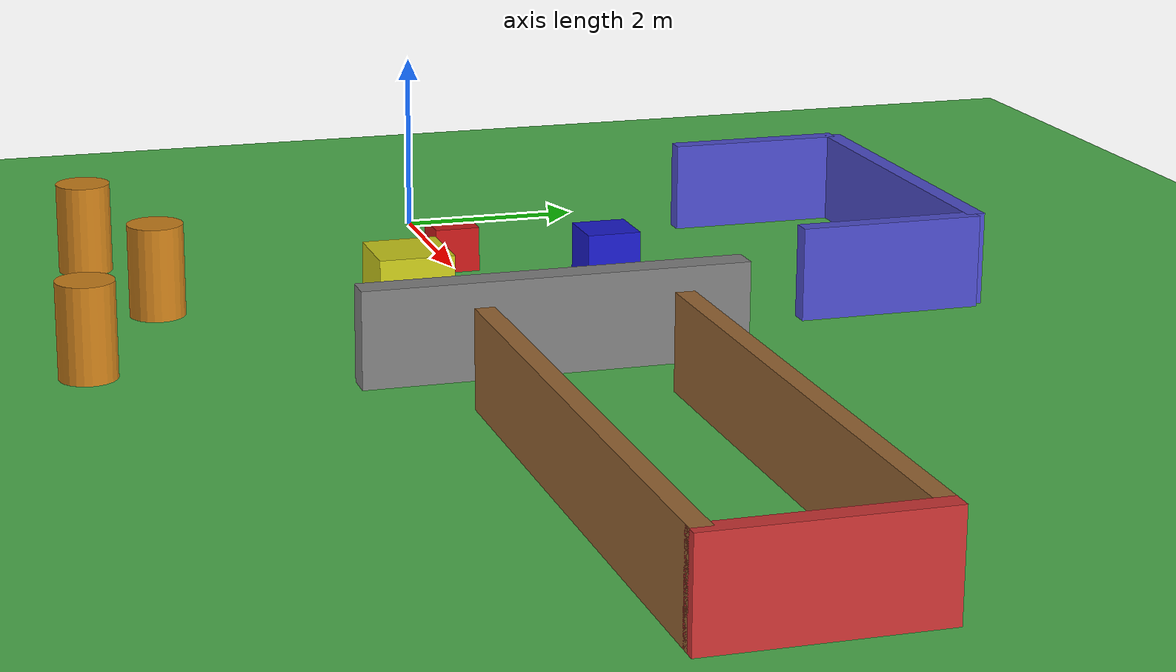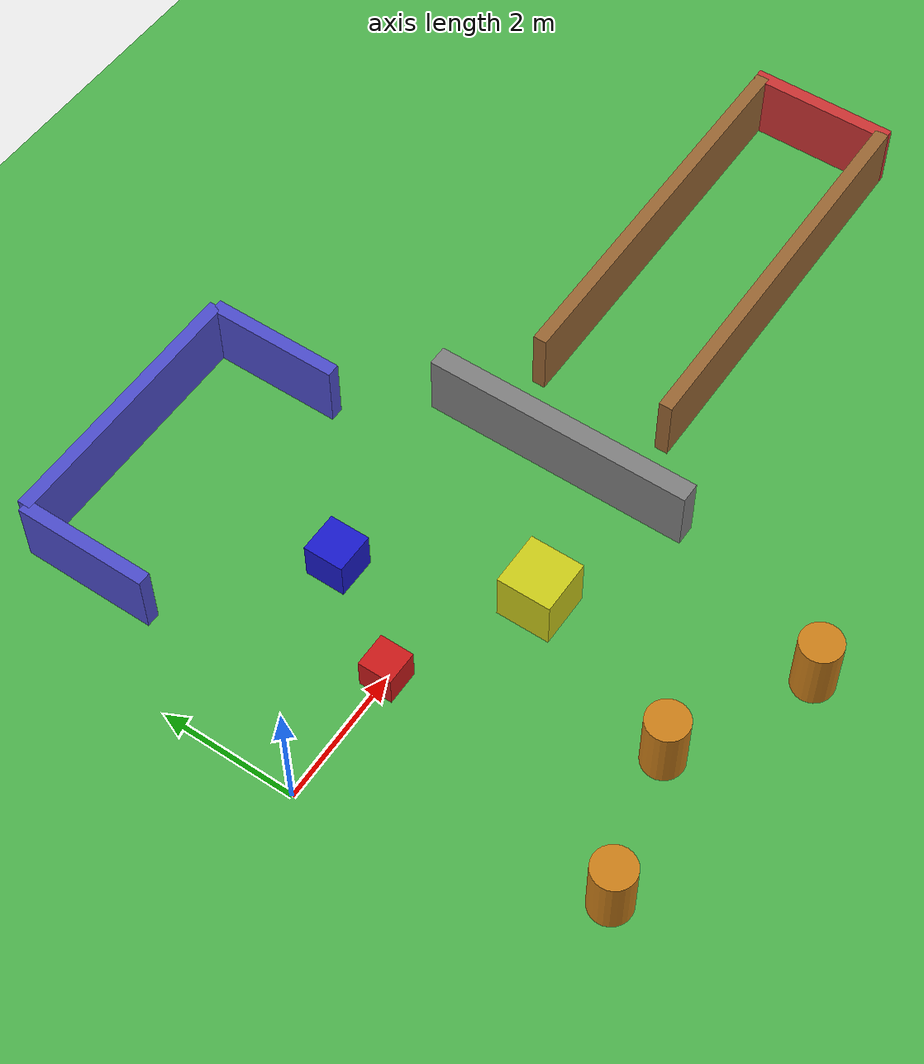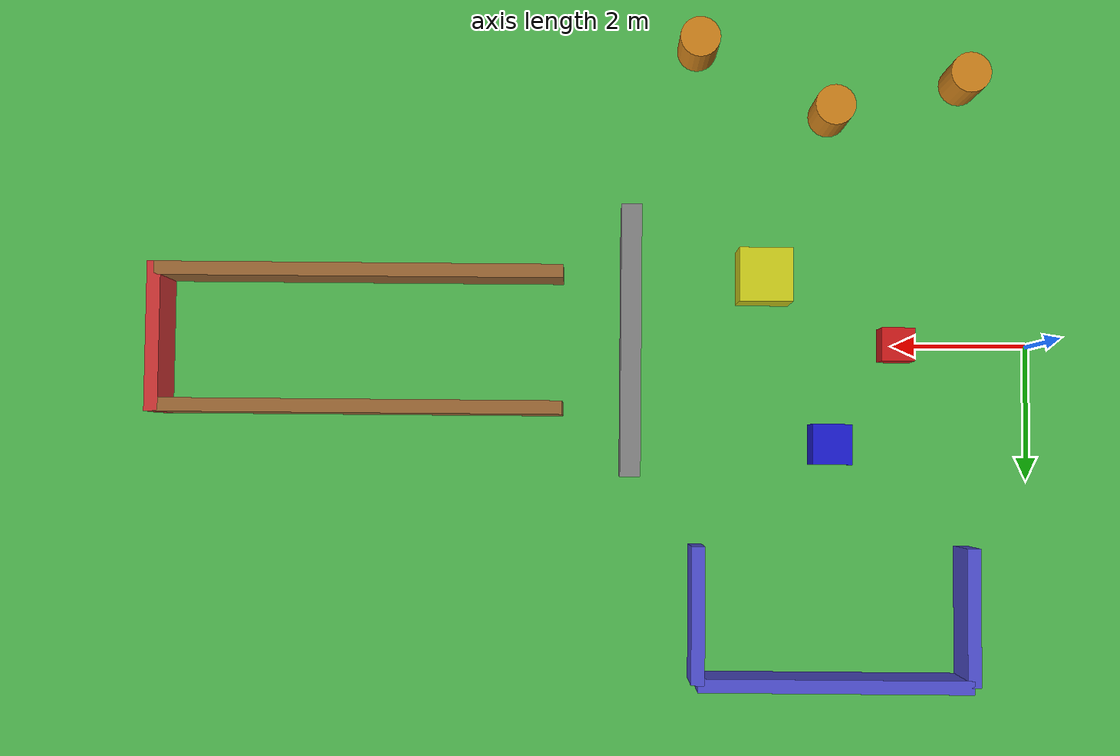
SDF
<?xml version="1.0" ?>
<sdf version="1.8">
  <world name="obstacle_world">

    <!-- 必須プラグインの読み込み                                            -->
    <!-- これらがないと物理演算やセンサーが動作しません                      -->

    <!-- 物理エンジン: 重力や衝突を計算する -->
    <plugin filename="gz-sim-physics-system"
            name="gz::sim::systems::Physics">
    </plugin>

    <!-- ユーザーコマンド: GUIからモデルを移動・削除する機能 -->
    <plugin filename="gz-sim-user-commands-system"
            name="gz::sim::systems::UserCommands">
    </plugin>

    <!-- シーンブロードキャスター: 3D描画情報をGUIに送信する -->
    <plugin filename="gz-sim-scene-broadcaster-system"
            name="gz::sim::systems::SceneBroadcaster">
    </plugin>

    <!-- センサーシステム: LiDARやカメラなどのセンサーを動作させる -->
    <!-- render_engine: 描画エンジンにogre2を使用 -->
    <plugin filename="gz-sim-sensors-system"
            name="gz::sim::systems::Sensors">
      <render_engine>ogre2</render_engine>
    </plugin>

    <!-- 太陽光                                                              -->
    <!-- ワールドを照らす平行光源（太陽のような光） -->
    <light type="directional" name="sun">
      <cast_shadows>true</cast_shadows>
      <pose>0 0 10 0 0 0</pose>
      <!-- 拡散光の色 (RGBA) -->
      <diffuse>0.8 0.8 0.8 1</diffuse>
      <!-- 鏡面反射光の色 -->
      <specular>0.2 0.2 0.2 1</specular>
      <!-- 光の減衰設定 -->
      <attenuation>
        <range>1000</range>
        <constant>0.9</constant>
        <linear>0.01</linear>
        <quadratic>0.001</quadratic>
      </attenuation>
      <!-- 光の向き (斜め上から照射) -->
      <direction>-0.5 0.1 -0.9</direction>
    </light>

    <!-- 地面                                                                -->
    <!-- 無限に広がる平面。staticなので物理計算の対象外 -->
    <model name="ground_plane">
      <static>true</static>
      <link name="link">
        <!-- 衝突判定用のジオメトリ（ロボットが地面の上を走れるように） -->
        <collision name="collision">
          <geometry>
            <plane>
              <normal>0 0 1</normal>
              <size>100 100</size>
            </plane>
          </geometry>
        </collision>
        <!-- 見た目のジオメトリ（緑色で草をイメージ） -->
        <visual name="visual">
          <geometry>
            <plane>
              <normal>0 0 1</normal>
              <size>100 100</size>
            </plane>
          </geometry>
          <material>
            <ambient>0.3 0.7 0.3 1</ambient>
            <diffuse>0.3 0.7 0.3 1</diffuse>
            <specular>0.1 0.1 0.1 1</specular>
          </material>
        </visual>
      </link>
    </model>

    <!-- 障害物 1: 正面のボックス                                           -->
    <!-- ロボットの前方2mの位置に赤いボックスを配置 -->
    <model name="obstacle_1">
      <pose>2.0 0.0 0.25 0 0 0</pose>
      <static>true</static>
      <link name="link">
        <collision name="collision">
          <geometry>
            <box><size>0.5 0.5 0.5</size></box>
          </geometry>
        </collision>
        <visual name="visual">
          <geometry>
            <box><size>0.5 0.5 0.5</size></box>
          </geometry>
          <material>
            <ambient>0.8 0.1 0.1 1</ambient>
            <diffuse>0.8 0.1 0.1 1</diffuse>
          </material>
        </visual>
      </link>
    </model>

    <!-- 障害物 2: 左前方のボックス                                         -->
    <!-- ロボットの左前方に青いボックスを配置 -->
    <model name="obstacle_2">
      <pose>3.0 1.5 0.3 0 0 0</pose>
      <static>true</static>
      <link name="link">
        <collision name="collision">
          <geometry>
            <box><size>0.6 0.6 0.6</size></box>
          </geometry>
        </collision>
        <visual name="visual">
          <geometry>
            <box><size>0.6 0.6 0.6</size></box>
          </geometry>
          <material>
            <ambient>0.1 0.1 0.8 1</ambient>
            <diffuse>0.1 0.1 0.8 1</diffuse>
          </material>
        </visual>
      </link>
    </model>

    <!-- 障害物 3: 右前方のボックス                                         -->
    <!-- ロボットの右前方に黄色いボックスを配置 -->
    <model name="obstacle_3">
      <pose>4.0 -1.0 0.4 0 0 0</pose>
      <static>true</static>
      <link name="link">
        <collision name="collision">
          <geometry>
            <box><size>0.8 0.8 0.8</size></box>
          </geometry>
        </collision>
        <visual name="visual">
          <geometry>
            <box><size>0.8 0.8 0.8</size></box>
          </geometry>
          <material>
            <ambient>0.8 0.8 0.1 1</ambient>
            <diffuse>0.8 0.8 0.1 1</diffuse>
          </material>
        </visual>
      </link>
    </model>

    <!-- 障害物 4: 遠方の壁                                                 -->
    <!-- ロボットの前方6mの位置に長い壁を配置 -->
    <model name="obstacle_wall">
      <pose>6.0 0.0 0.5 0 0 0</pose>
      <static>true</static>
      <link name="link">
        <collision name="collision">
          <geometry>
            <box><size>0.3 4.0 1.0</size></box>
          </geometry>
        </collision>
        <visual name="visual">
          <geometry>
            <box><size>0.3 4.0 1.0</size></box>
          </geometry>
          <material>
            <ambient>0.5 0.5 0.5 1</ambient>
            <diffuse>0.5 0.5 0.5 1</diffuse>
          </material>
        </visual>
      </link>
    </model>

    <!-- Phase 2: 通路 (壁沿い走行テスト)                                  -->
    <!-- 幅 2m の通路: 左右の壁 (6m 長) -->
    <model name="corridor_wall_left">
      <pose>10.0 1.0 0.5 0 0 0</pose>
      <static>true</static>
      <link name="link">
        <collision name="collision">
          <geometry><box><size>6.0 0.2 1.0</size></box></geometry>
        </collision>
        <visual name="visual">
          <geometry><box><size>6.0 0.2 1.0</size></box></geometry>
          <material>
            <ambient>0.6 0.4 0.2 1</ambient>
            <diffuse>0.6 0.4 0.2 1</diffuse>
          </material>
        </visual>
      </link>
    </model>

    <model name="corridor_wall_right">
      <pose>10.0 -1.0 0.5 0 0 0</pose>
      <static>true</static>
      <link name="link">
        <collision name="collision">
          <geometry><box><size>6.0 0.2 1.0</size></box></geometry>
        </collision>
        <visual name="visual">
          <geometry><box><size>6.0 0.2 1.0</size></box></geometry>
          <material>
            <ambient>0.6 0.4 0.2 1</ambient>
            <diffuse>0.6 0.4 0.2 1</diffuse>
          </material>
        </visual>
      </link>
    </model>

    <!-- Phase 2: 行き止まり (Uターンテスト)                               -->
    <!-- 通路の先端を壁で塞ぐ -->
    <model name="dead_end_wall">
      <pose>13.0 0.0 0.5 0 0 0</pose>
      <static>true</static>
      <link name="link">
        <collision name="collision">
          <geometry><box><size>0.2 2.2 1.0</size></box></geometry>
        </collision>
        <visual name="visual">
          <geometry><box><size>0.2 2.2 1.0</size></box></geometry>
          <material>
            <ambient>0.8 0.2 0.2 1</ambient>
            <diffuse>0.8 0.2 0.2 1</diffuse>
          </material>
        </visual>
      </link>
    </model>

    <!-- Phase 2: T字路 (回避方向選択テスト)                               -->
    <model name="t_junction_top">
      <pose>3.0 5.0 0.5 0 0 0</pose>
      <static>true</static>
      <link name="link">
        <collision name="collision">
          <geometry><box><size>4.0 0.2 1.0</size></box></geometry>
        </collision>
        <visual name="visual">
          <geometry><box><size>4.0 0.2 1.0</size></box></geometry>
          <material>
            <ambient>0.3 0.3 0.8 1</ambient>
            <diffuse>0.3 0.3 0.8 1</diffuse>
          </material>
        </visual>
      </link>
    </model>

    <model name="t_junction_left">
      <pose>1.0 4.0 0.5 0 0 0</pose>
      <static>true</static>
      <link name="link">
        <collision name="collision">
          <geometry><box><size>0.2 2.0 1.0</size></box></geometry>
        </collision>
        <visual name="visual">
          <geometry><box><size>0.2 2.0 1.0</size></box></geometry>
          <material>
            <ambient>0.3 0.3 0.8 1</ambient>
            <diffuse>0.3 0.3 0.8 1</diffuse>
          </material>
        </visual>
      </link>
    </model>

    <model name="t_junction_right">
      <pose>5.0 4.0 0.5 0 0 0</pose>
      <static>true</static>
      <link name="link">
        <collision name="collision">
          <geometry><box><size>0.2 2.0 1.0</size></box></geometry>
        </collision>
        <visual name="visual">
          <geometry><box><size>0.2 2.0 1.0</size></box></geometry>
          <material>
            <ambient>0.3 0.3 0.8 1</ambient>
            <diffuse>0.3 0.3 0.8 1</diffuse>
          </material>
        </visual>
      </link>
    </model>

    <!-- Phase 2: スラローム (連続障害物テスト)                             -->
    <!-- 3つの円柱をジグザグ配置 -->
    <model name="slalom_1">
      <pose>1.0 -4.0 0.5 0 0 0</pose>
      <static>true</static>
      <link name="link">
        <collision name="collision">
          <geometry><cylinder><radius>0.3</radius><length>1.0</length></cylinder></geometry>
        </collision>
        <visual name="visual">
          <geometry><cylinder><radius>0.3</radius><length>1.0</length></cylinder></geometry>
          <material>
            <ambient>0.8 0.5 0.1 1</ambient>
            <diffuse>0.8 0.5 0.1 1</diffuse>
          </material>
        </visual>
      </link>
    </model>

    <model name="slalom_2">
      <pose>3.0 -3.5 0.5 0 0 0</pose>
      <static>true</static>
      <link name="link">
        <collision name="collision">
          <geometry><cylinder><radius>0.3</radius><length>1.0</length></cylinder></geometry>
        </collision>
        <visual name="visual">
          <geometry><cylinder><radius>0.3</radius><length>1.0</length></cylinder></geometry>
          <material>
            <ambient>0.8 0.5 0.1 1</ambient>
            <diffuse>0.8 0.5 0.1 1</diffuse>
          </material>
        </visual>
      </link>
    </model>

    <model name="slalom_3">
      <pose>5.0 -4.5 0.5 0 0 0</pose>
      <static>true</static>
      <link name="link">
        <collision name="collision">
          <geometry><cylinder><radius>0.3</radius><length>1.0</length></cylinder></geometry>
        </collision>
        <visual name="visual">
          <geometry><cylinder><radius>0.3</radius><length>1.0</length></cylinder></geometry>
          <material>
            <ambient>0.8 0.5 0.1 1</ambient>
            <diffuse>0.8 0.5 0.1 1</diffuse>
          </material>
        </visual>
      </link>
    </model>

  </world>
</sdf>
